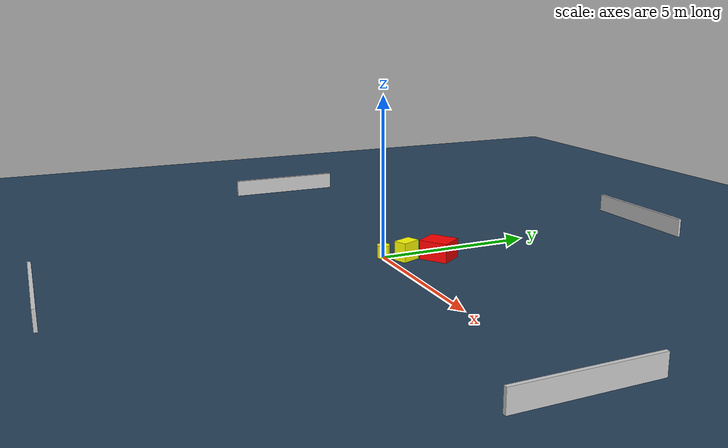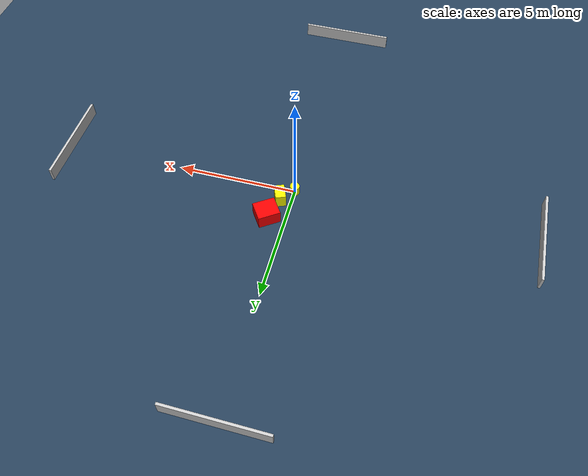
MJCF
<?xml version="1.0" ?>
<mujoco model="generated_environment">
  <option timestep="0.01" integrator="RK4" cone="elliptic"/>
  <default>
    <geom density="1"/>
  </default>
  <asset>
    <texture builtin="gradient" height="3072" name="skybox" rgb1="0.3 0.5 0.7" rgb2="0 0 0" type="skybox" width="512"/>
    <texture builtin="checker" height="300" name="groundplane" rgb1="0.2 0.3 0.4" rgb2="0.1 0.2 0.3" type="2d" width="300"/>
    <material name="groundplane" reflectance="0.2" texrepeat="5 5" texture="groundplane"/>
  </asset>
  <worldbody>
    <light dir="0 0 -1" directional="true" pos="0 0 1.5"/>
    <geom condim="3" friction="0.5 0.005 0.001" material="groundplane" name="floor" pos="0 0 0" size="0 0 0.05" type="plane"/>
    <body name="walls">
      <geom name="wall_1" condim="4" pos="-10.0 0.0 0.3" rgba="0.800000011920929 0.800000011920929 0.800000011920929 1.0" size="0.05 2.0 0.3" type="box"/>
      <geom name="wall_2" condim="4" pos="10.0 0.0 0.3" rgba="0.800000011920929 0.800000011920929 0.800000011920929 1.0" size="0.05 2.0 0.3" type="box"/>
      <geom name="wall_3" condim="4" pos="0.0 -10.0 0.3" rgba="0.800000011920929 0.800000011920929 0.800000011920929 1.0" size="2.0 0.05 0.3" type="box"/>
      <geom name="wall_4" condim="4" pos="0.0 10.0 0.3" rgba="0.800000011920929 0.800000011920929 0.800000011920929 1.0" size="2.0 0.05 0.3" type="box"/>
    </body>
    <body name="robot">
      <joint name="joint_x" type="slide" pos="0 0 0" axis="1 0 0"/>
      <joint name="joint_y" type="slide" pos="0 0 0" axis="0 1 0"/>
      <geom name="robot" type="cylinder" pos="0.0 0.0 0.2" size="0.2 0.2 0.0" mass="5.0" friction="1.0 0.005 0.0001" condim="4" rgba="1.0 1.0 0.0 1.0"/>
    </body>
    <body name="obstacle_1_movable">
      <geom name="obstacle_1_movable" condim="4" pos="0.471914475034934 0.5638711082531377 0.3" euler="0 0 292.5634395003108" friction="0.0 0.005 0.001" rgba="1.0 1.0 0.0 1.0" size="0.3146859593859417 0.21276658881591234 0.3" type="box" mass="0.1"/>
      <joint type="free"/>
    </body>
    <body name="obstacle_2_static">
      <geom name="obstacle_2_static" condim="4" pos="0.762106527920627 1.5235089328102565 0.3" euler="0 0 304.82701400417886" friction="0.0 0.005 0.001" rgba="1.0 0.0 0.0 1.0" size="0.40290797497496444 0.45552141776017163 0.3" type="box"/>
    </body>
  </worldbody>
  <actuator>
    <motor name="actuator_x" joint="joint_x" gear="1" ctrlrange="-1 1"/>
    <motor name="actuator_y" joint="joint_y" gear="1" ctrlrange="-1 1"/>
  </actuator>
</mujoco>
